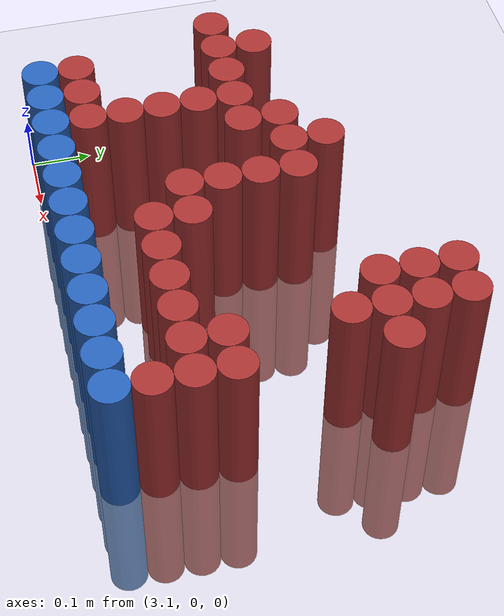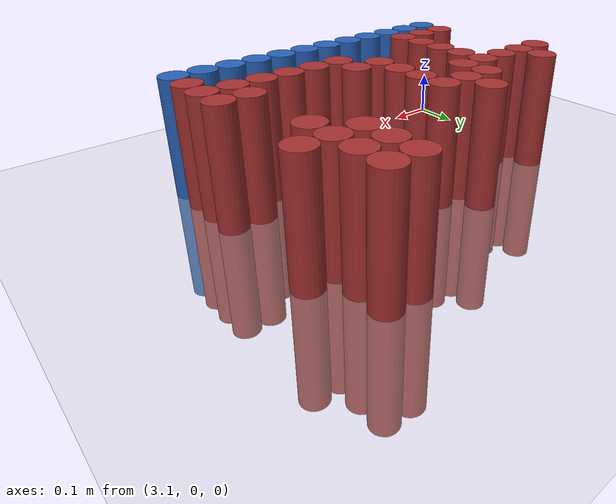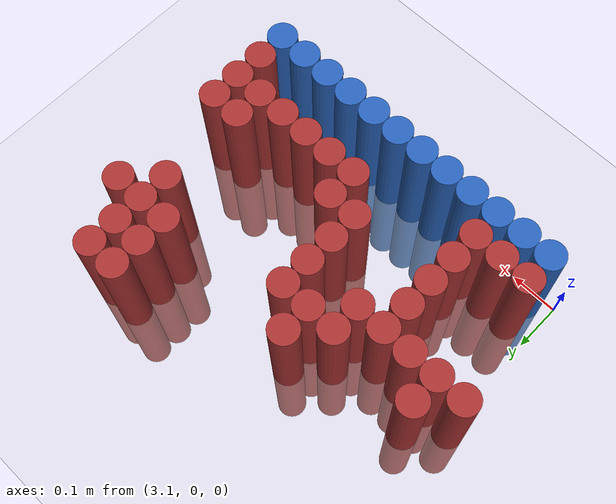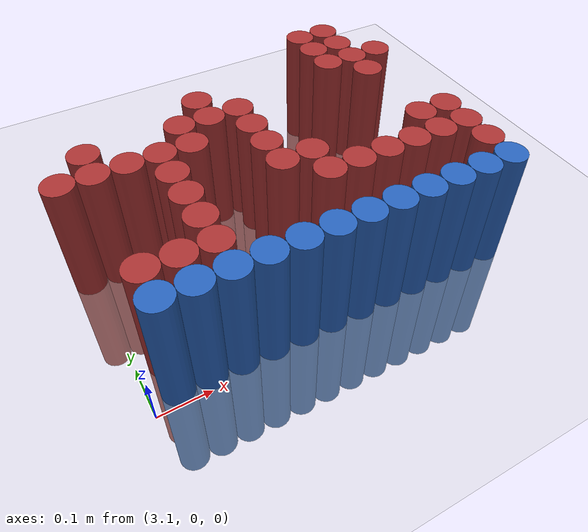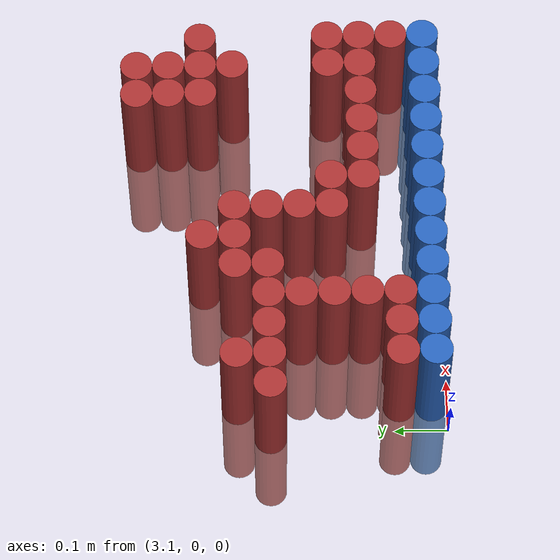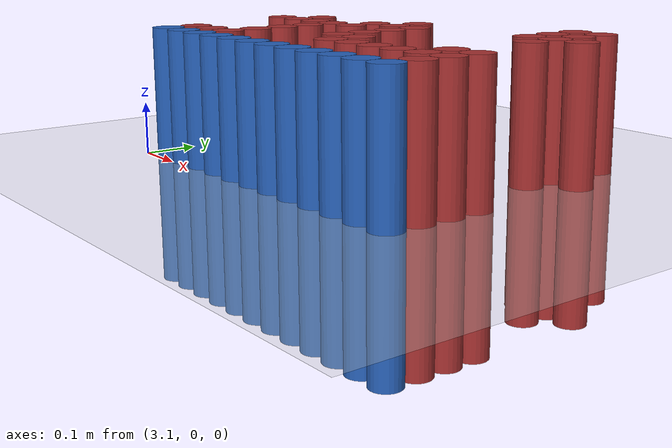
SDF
<sdf version="1.6">
 <world name="default">
  <model name="ground_plane">
   <static>1</static>
   <link name="link">
    <collision name="collision">
     <geometry><plane><normal>0 0 1</normal><size>100 100</size></plane></geometry>
     <surface><friction><ode><mu>100</mu><mu2>50</mu2></ode></friction></surface>
    </collision>
    <visual name="visual">
     <cast_shadows>0</cast_shadows>
     <geometry><plane><normal>0 0 1</normal><size>100 100</size></plane></geometry>
     <material>
      <script><uri>file://media/materials/scripts/gazebo.material</uri><name>Gazebo/Grey</name></script>
     </material>
    </visual>
   </link>
  </model>
  <model name="unit_cylinder_228">
   <static>1</static>
   <pose>3.690000 0.570000 0.000000 0.000000 0.000000 0.000000</pose>
   <link name="link">
    <inertial>
     <mass>1</mass>
     <inertia><ixx>0.145833</ixx><ixy>0</ixy><ixz>0</ixz><iyy>0.145833</iyy><iyz>0</iyz><izz>0.125</izz></inertia>
    </inertial>
    <collision name="collision">
     <geometry><cylinder><radius>0.030000</radius><length>0.5</length></cylinder></geometry>
    </collision>
    <visual name="visual">
     <geometry><cylinder><radius>0.030000</radius><length>0.5</length></cylinder></geometry>
     <material>
      <ambient>0.648000 0.192000 0.192000 1</ambient>
      <diffuse>0.648000 0.192000 0.192000 1</diffuse>
     </material>
     <material>
      <script><name>Gazebo/Grey</name><uri>file://media/materials/scripts/gazebo.material</uri></script>
     </material>
    </visual>
   </link>
  </model>
  <model name="unit_cylinder_229">
   <static>1</static>
   <pose>3.750000 0.570000 0.000000 0.000000 0.000000 0.000000</pose>
   <link name="link">
    <inertial>
     <mass>1</mass>
     <inertia><ixx>0.145833</ixx><ixy>0</ixy><ixz>0</ixz><iyy>0.145833</iyy><iyz>0</iyz><izz>0.125</izz></inertia>
    </inertial>
    <collision name="collision">
     <geometry><cylinder><radius>0.030000</radius><length>0.5</length></cylinder></geometry>
    </collision>
    <visual name="visual">
     <geometry><cylinder><radius>0.030000</radius><length>0.5</length></cylinder></geometry>
     <material>
      <ambient>0.648000 0.192000 0.192000 1</ambient>
      <diffuse>0.648000 0.192000 0.192000 1</diffuse>
     </material>
     <material>
      <script><name>Gazebo/Grey</name><uri>file://media/materials/scripts/gazebo.material</uri></script>
     </material>
    </visual>
   </link>
  </model>
  <model name="unit_cylinder_235">
   <static>1</static>
   <pose>3.690000 0.510000 0.000000 0.000000 0.000000 0.000000</pose>
   <link name="link">
    <inertial>
     <mass>1</mass>
     <inertia><ixx>0.145833</ixx><ixy>0</ixy><ixz>0</ixz><iyy>0.145833</iyy><iyz>0</iyz><izz>0.125</izz></inertia>
    </inertial>
    <collision name="collision">
     <geometry><cylinder><radius>0.030000</radius><length>0.5</length></cylinder></geometry>
    </collision>
    <visual name="visual">
     <geometry><cylinder><radius>0.030000</radius><length>0.5</length></cylinder></geometry>
     <material>
      <ambient>0.648000 0.192000 0.192000 1</ambient>
      <diffuse>0.648000 0.192000 0.192000 1</diffuse>
     </material>
     <material>
      <script><name>Gazebo/Grey</name><uri>file://media/materials/scripts/gazebo.material</uri></script>
     </material>
    </visual>
   </link>
  </model>
  <model name="unit_cylinder_236">
   <static>1</static>
   <pose>3.750000 0.510000 0.000000 0.000000 0.000000 0.000000</pose>
   <link name="link">
    <inertial>
     <mass>1</mass>
     <inertia><ixx>0.145833</ixx><ixy>0</ixy><ixz>0</ixz><iyy>0.145833</iyy><iyz>0</iyz><izz>0.125</izz></inertia>
    </inertial>
    <collision name="collision">
     <geometry><cylinder><radius>0.030000</radius><length>0.5</length></cylinder></geometry>
    </collision>
    <visual name="visual">
     <geometry><cylinder><radius>0.030000</radius><length>0.5</length></cylinder></geometry>
     <material>
      <ambient>0.648000 0.192000 0.192000 1</ambient>
      <diffuse>0.648000 0.192000 0.192000 1</diffuse>
     </material>
     <material>
      <script><name>Gazebo/Grey</name><uri>file://media/materials/scripts/gazebo.material</uri></script>
     </material>
    </visual>
   </link>
  </model>
  <model name="unit_cylinder_241">
   <static>1</static>
   <pose>3.390000 0.450000 0.000000 0.000000 0.000000 0.000000</pose>
   <link name="link">
    <inertial>
     <mass>1</mass>
     <inertia><ixx>0.145833</ixx><ixy>0</ixy><ixz>0</ixz><iyy>0.145833</iyy><iyz>0</iyz><izz>0.125</izz></inertia>
    </inertial>
    <collision name="collision">
     <geometry><cylinder><radius>0.030000</radius><length>0.5</length></cylinder></geometry>
    </collision>
    <visual name="visual">
     <geometry><cylinder><radius>0.030000</radius><length>0.5</length></cylinder></geometry>
     <material>
      <ambient>0.648000 0.192000 0.192000 1</ambient>
      <diffuse>0.648000 0.192000 0.192000 1</diffuse>
     </material>
     <material>
      <script><name>Gazebo/Grey</name><uri>file://media/materials/scripts/gazebo.material</uri></script>
     </material>
    </visual>
   </link>
  </model>
  <model name="unit_cylinder_242">
   <static>1</static>
   <pose>3.690000 0.450000 0.000000 0.000000 0.000000 0.000000</pose>
   <link name="link">
    <inertial>
     <mass>1</mass>
     <inertia><ixx>0.145833</ixx><ixy>0</ixy><ixz>0</ixz><iyy>0.145833</iyy><iyz>0</iyz><izz>0.125</izz></inertia>
    </inertial>
    <collision name="collision">
     <geometry><cylinder><radius>0.030000</radius><length>0.5</length></cylinder></geometry>
    </collision>
    <visual name="visual">
     <geometry><cylinder><radius>0.030000</radius><length>0.5</length></cylinder></geometry>
     <material>
      <ambient>0.648000 0.192000 0.192000 1</ambient>
      <diffuse>0.648000 0.192000 0.192000 1</diffuse>
     </material>
     <material>
      <script><name>Gazebo/Grey</name><uri>file://media/materials/scripts/gazebo.material</uri></script>
     </material>
    </visual>
   </link>
  </model>
  <model name="unit_cylinder_243">
   <static>1</static>
   <pose>3.750000 0.450000 0.000000 0.000000 0.000000 0.000000</pose>
   <link name="link">
    <inertial>
     <mass>1</mass>
     <inertia><ixx>0.145833</ixx><ixy>0</ixy><ixz>0</ixz><iyy>0.145833</iyy><iyz>0</iyz><izz>0.125</izz></inertia>
    </inertial>
    <collision name="collision">
     <geometry><cylinder><radius>0.030000</radius><length>0.5</length></cylinder></geometry>
    </collision>
    <visual name="visual">
     <geometry><cylinder><radius>0.030000</radius><length>0.5</length></cylinder></geometry>
     <material>
      <ambient>0.648000 0.192000 0.192000 1</ambient>
      <diffuse>0.648000 0.192000 0.192000 1</diffuse>
     </material>
     <material>
      <script><name>Gazebo/Grey</name><uri>file://media/materials/scripts/gazebo.material</uri></script>
     </material>
    </visual>
   </link>
  </model>
  <model name="unit_cylinder_244">
   <static>1</static>
   <pose>3.810000 0.450000 0.000000 0.000000 0.000000 0.000000</pose>
   <link name="link">
    <inertial>
     <mass>1</mass>
     <inertia><ixx>0.145833</ixx><ixy>0</ixy><ixz>0</ixz><iyy>0.145833</iyy><iyz>0</iyz><izz>0.125</izz></inertia>
    </inertial>
    <collision name="collision">
     <geometry><cylinder><radius>0.030000</radius><length>0.5</length></cylinder></geometry>
    </collision>
    <visual name="visual">
     <geometry><cylinder><radius>0.030000</radius><length>0.5</length></cylinder></geometry>
     <material>
      <ambient>0.648000 0.192000 0.192000 1</ambient>
      <diffuse>0.648000 0.192000 0.192000 1</diffuse>
     </material>
     <material>
      <script><name>Gazebo/Grey</name><uri>file://media/materials/scripts/gazebo.material</uri></script>
     </material>
    </visual>
   </link>
  </model>
  <model name="unit_cylinder_251">
   <static>1</static>
   <pose>3.150000 0.390000 0.000000 0.000000 0.000000 0.000000</pose>
   <link name="link">
    <inertial>
     <mass>1</mass>
     <inertia><ixx>0.145833</ixx><ixy>0</ixy><ixz>0</ixz><iyy>0.145833</iyy><iyz>0</iyz><izz>0.125</izz></inertia>
    </inertial>
    <collision name="collision">
     <geometry><cylinder><radius>0.030000</radius><length>0.5</length></cylinder></geometry>
    </collision>
    <visual name="visual">
     <geometry><cylinder><radius>0.030000</radius><length>0.5</length></cylinder></geometry>
     <material>
      <ambient>0.648000 0.192000 0.192000 1</ambient>
      <diffuse>0.648000 0.192000 0.192000 1</diffuse>
     </material>
     <material>
      <script><name>Gazebo/Grey</name><uri>file://media/materials/scripts/gazebo.material</uri></script>
     </material>
    </visual>
   </link>
  </model>
  <model name="unit_cylinder_252">
   <static>1</static>
   <pose>3.330000 0.390000 0.000000 0.000000 0.000000 0.000000</pose>
   <link name="link">
    <inertial>
     <mass>1</mass>
     <inertia><ixx>0.145833</ixx><ixy>0</ixy><ixz>0</ixz><iyy>0.145833</iyy><iyz>0</iyz><izz>0.125</izz></inertia>
    </inertial>
    <collision name="collision">
     <geometry><cylinder><radius>0.030000</radius><length>0.5</length></cylinder></geometry>
    </collision>
    <visual name="visual">
     <geometry><cylinder><radius>0.030000</radius><length>0.5</length></cylinder></geometry>
     <material>
      <ambient>0.648000 0.192000 0.192000 1</ambient>
      <diffuse>0.648000 0.192000 0.192000 1</diffuse>
     </material>
     <material>
      <script><name>Gazebo/Grey</name><uri>file://media/materials/scripts/gazebo.material</uri></script>
     </material>
    </visual>
   </link>
  </model>
  <model name="unit_cylinder_253">
   <static>1</static>
   <pose>3.390000 0.390000 0.000000 0.000000 0.000000 0.000000</pose>
   <link name="link">
    <inertial>
     <mass>1</mass>
     <inertia><ixx>0.145833</ixx><ixy>0</ixy><ixz>0</ixz><iyy>0.145833</iyy><iyz>0</iyz><izz>0.125</izz></inertia>
    </inertial>
    <collision name="collision">
     <geometry><cylinder><radius>0.030000</radius><length>0.5</length></cylinder></geometry>
    </collision>
    <visual name="visual">
     <geometry><cylinder><radius>0.030000</radius><length>0.5</length></cylinder></geometry>
     <material>
      <ambient>0.648000 0.192000 0.192000 1</ambient>
      <diffuse>0.648000 0.192000 0.192000 1</diffuse>
     </material>
     <material>
      <script><name>Gazebo/Grey</name><uri>file://media/materials/scripts/gazebo.material</uri></script>
     </material>
    </visual>
   </link>
  </model>
  <model name="unit_cylinder_254">
   <static>1</static>
   <pose>3.450000 0.390000 0.000000 0.000000 0.000000 0.000000</pose>
   <link name="link">
    <inertial>
     <mass>1</mass>
     <inertia><ixx>0.145833</ixx><ixy>0</ixy><ixz>0</ixz><iyy>0.145833</iyy><iyz>0</iyz><izz>0.125</izz></inertia>
    </inertial>
    <collision name="collision">
     <geometry><cylinder><radius>0.030000</radius><length>0.5</length></cylinder></geometry>
    </collision>
    <visual name="visual">
     <geometry><cylinder><radius>0.030000</radius><length>0.5</length></cylinder></geometry>
     <material>
      <ambient>0.648000 0.192000 0.192000 1</ambient>
      <diffuse>0.648000 0.192000 0.192000 1</diffuse>
     </material>
     <material>
      <script><name>Gazebo/Grey</name><uri>file://media/materials/scripts/gazebo.material</uri></script>
     </material>
    </visual>
   </link>
  </model>
  <model name="unit_cylinder_255">
   <static>1</static>
   <pose>3.750000 0.390000 0.000000 0.000000 0.000000 0.000000</pose>
   <link name="link">
    <inertial>
     <mass>1</mass>
     <inertia><ixx>0.145833</ixx><ixy>0</ixy><ixz>0</ixz><iyy>0.145833</iyy><iyz>0</iyz><izz>0.125</izz></inertia>
    </inertial>
    <collision name="collision">
     <geometry><cylinder><radius>0.030000</radius><length>0.5</length></cylinder></geometry>
    </collision>
    <visual name="visual">
     <geometry><cylinder><radius>0.030000</radius><length>0.5</length></cylinder></geometry>
     <material>
      <ambient>0.648000 0.192000 0.192000 1</ambient>
      <diffuse>0.648000 0.192000 0.192000 1</diffuse>
     </material>
     <material>
      <script><name>Gazebo/Grey</name><uri>file://media/materials/scripts/gazebo.material</uri></script>
     </material>
    </visual>
   </link>
  </model>
  <model name="unit_cylinder_261">
   <static>1</static>
   <pose>3.090000 0.330000 0.000000 0.000000 0.000000 0.000000</pose>
   <link name="link">
    <inertial>
     <mass>1</mass>
     <inertia><ixx>0.145833</ixx><ixy>0</ixy><ixz>0</ixz><iyy>0.145833</iyy><iyz>0</iyz><izz>0.125</izz></inertia>
    </inertial>
    <collision name="collision">
     <geometry><cylinder><radius>0.030000</radius><length>0.5</length></cylinder></geometry>
    </collision>
    <visual name="visual">
     <geometry><cylinder><radius>0.030000</radius><length>0.5</length></cylinder></geometry>
     <material>
      <ambient>0.648000 0.192000 0.192000 1</ambient>
      <diffuse>0.648000 0.192000 0.192000 1</diffuse>
     </material>
     <material>
      <script><name>Gazebo/Grey</name><uri>file://media/materials/scripts/gazebo.material</uri></script>
     </material>
    </visual>
   </link>
  </model>
  <model name="unit_cylinder_262">
   <static>1</static>
   <pose>3.150000 0.330000 0.000000 0.000000 0.000000 0.000000</pose>
   <link name="link">
    <inertial>
     <mass>1</mass>
     <inertia><ixx>0.145833</ixx><ixy>0</ixy><ixz>0</ixz><iyy>0.145833</iyy><iyz>0</iyz><izz>0.125</izz></inertia>
    </inertial>
    <collision name="collision">
     <geometry><cylinder><radius>0.030000</radius><length>0.5</length></cylinder></geometry>
    </collision>
    <visual name="visual">
     <geometry><cylinder><radius>0.030000</radius><length>0.5</length></cylinder></geometry>
     <material>
      <ambient>0.648000 0.192000 0.192000 1</ambient>
      <diffuse>0.648000 0.192000 0.192000 1</diffuse>
     </material>
     <material>
      <script><name>Gazebo/Grey</name><uri>file://media/materials/scripts/gazebo.material</uri></script>
     </material>
    </visual>
   </link>
  </model>
  <model name="unit_cylinder_263">
   <static>1</static>
   <pose>3.210000 0.330000 0.000000 0.000000 0.000000 0.000000</pose>
   <link name="link">
    <inertial>
     <mass>1</mass>
     <inertia><ixx>0.145833</ixx><ixy>0</ixy><ixz>0</ixz><iyy>0.145833</iyy><iyz>0</iyz><izz>0.125</izz></inertia>
    </inertial>
    <collision name="collision">
     <geometry><cylinder><radius>0.030000</radius><length>0.5</length></cylinder></geometry>
    </collision>
    <visual name="visual">
     <geometry><cylinder><radius>0.030000</radius><length>0.5</length></cylinder></geometry>
     <material>
      <ambient>0.648000 0.192000 0.192000 1</ambient>
      <diffuse>0.648000 0.192000 0.192000 1</diffuse>
     </material>
     <material>
      <script><name>Gazebo/Grey</name><uri>file://media/materials/scripts/gazebo.material</uri></script>
     </material>
    </visual>
   </link>
  </model>
  <model name="unit_cylinder_264">
   <static>1</static>
   <pose>3.270000 0.330000 0.000000 0.000000 0.000000 0.000000</pose>
   <link name="link">
    <inertial>
     <mass>1</mass>
     <inertia><ixx>0.145833</ixx><ixy>0</ixy><ixz>0</ixz><iyy>0.145833</iyy><iyz>0</iyz><izz>0.125</izz></inertia>
    </inertial>
    <collision name="collision">
     <geometry><cylinder><radius>0.030000</radius><length>0.5</length></cylinder></geometry>
    </collision>
    <visual name="visual">
     <geometry><cylinder><radius>0.030000</radius><length>0.5</length></cylinder></geometry>
     <material>
      <ambient>0.648000 0.192000 0.192000 1</ambient>
      <diffuse>0.648000 0.192000 0.192000 1</diffuse>
     </material>
     <material>
      <script><name>Gazebo/Grey</name><uri>file://media/materials/scripts/gazebo.material</uri></script>
     </material>
    </visual>
   </link>
  </model>
  <model name="unit_cylinder_265">
   <static>1</static>
   <pose>3.330000 0.330000 0.000000 0.000000 0.000000 0.000000</pose>
   <link name="link">
    <inertial>
     <mass>1</mass>
     <inertia><ixx>0.145833</ixx><ixy>0</ixy><ixz>0</ixz><iyy>0.145833</iyy><iyz>0</iyz><izz>0.125</izz></inertia>
    </inertial>
    <collision name="collision">
     <geometry><cylinder><radius>0.030000</radius><length>0.5</length></cylinder></geometry>
    </collision>
    <visual name="visual">
     <geometry><cylinder><radius>0.030000</radius><length>0.5</length></cylinder></geometry>
     <material>
      <ambient>0.648000 0.192000 0.192000 1</ambient>
      <diffuse>0.648000 0.192000 0.192000 1</diffuse>
     </material>
     <material>
      <script><name>Gazebo/Grey</name><uri>file://media/materials/scripts/gazebo.material</uri></script>
     </material>
    </visual>
   </link>
  </model>
  <model name="unit_cylinder_266">
   <static>1</static>
   <pose>3.450000 0.330000 0.000000 0.000000 0.000000 0.000000</pose>
   <link name="link">
    <inertial>
     <mass>1</mass>
     <inertia><ixx>0.145833</ixx><ixy>0</ixy><ixz>0</ixz><iyy>0.145833</iyy><iyz>0</iyz><izz>0.125</izz></inertia>
    </inertial>
    <collision name="collision">
     <geometry><cylinder><radius>0.030000</radius><length>0.5</length></cylinder></geometry>
    </collision>
    <visual name="visual">
     <geometry><cylinder><radius>0.030000</radius><length>0.5</length></cylinder></geometry>
     <material>
      <ambient>0.648000 0.192000 0.192000 1</ambient>
      <diffuse>0.648000 0.192000 0.192000 1</diffuse>
     </material>
     <material>
      <script><name>Gazebo/Grey</name><uri>file://media/materials/scripts/gazebo.material</uri></script>
     </material>
    </visual>
   </link>
  </model>
  <model name="unit_cylinder_275">
   <static>1</static>
   <pose>3.270000 0.270000 0.000000 0.000000 0.000000 0.000000</pose>
   <link name="link">
    <inertial>
     <mass>1</mass>
     <inertia><ixx>0.145833</ixx><ixy>0</ixy><ixz>0</ixz><iyy>0.145833</iyy><iyz>0</iyz><izz>0.125</izz></inertia>
    </inertial>
    <collision name="collision">
     <geometry><cylinder><radius>0.030000</radius><length>0.5</length></cylinder></geometry>
    </collision>
    <visual name="visual">
     <geometry><cylinder><radius>0.030000</radius><length>0.5</length></cylinder></geometry>
     <material>
      <ambient>0.648000 0.192000 0.192000 1</ambient>
      <diffuse>0.648000 0.192000 0.192000 1</diffuse>
     </material>
     <material>
      <script><name>Gazebo/Grey</name><uri>file://media/materials/scripts/gazebo.material</uri></script>
     </material>
    </visual>
   </link>
  </model>
  <model name="unit_cylinder_276">
   <static>1</static>
   <pose>3.450000 0.270000 0.000000 0.000000 0.000000 0.000000</pose>
   <link name="link">
    <inertial>
     <mass>1</mass>
     <inertia><ixx>0.145833</ixx><ixy>0</ixy><ixz>0</ixz><iyy>0.145833</iyy><iyz>0</iyz><izz>0.125</izz></inertia>
    </inertial>
    <collision name="collision">
     <geometry><cylinder><radius>0.030000</radius><length>0.5</length></cylinder></geometry>
    </collision>
    <visual name="visual">
     <geometry><cylinder><radius>0.030000</radius><length>0.5</length></cylinder></geometry>
     <material>
      <ambient>0.648000 0.192000 0.192000 1</ambient>
      <diffuse>0.648000 0.192000 0.192000 1</diffuse>
     </material>
     <material>
      <script><name>Gazebo/Grey</name><uri>file://media/materials/scripts/gazebo.material</uri></script>
     </material>
    </visual>
   </link>
  </model>
  <model name="unit_cylinder_282">
   <static>1</static>
   <pose>3.270000 0.210000 0.000000 0.000000 0.000000 0.000000</pose>
   <link name="link">
    <inertial>
     <mass>1</mass>
     <inertia><ixx>0.145833</ixx><ixy>0</ixy><ixz>0</ixz><iyy>0.145833</iyy><iyz>0</iyz><izz>0.125</izz></inertia>
    </inertial>
    <collision name="collision">
     <geometry><cylinder><radius>0.030000</radius><length>0.5</length></cylinder></geometry>
    </collision>
    <visual name="visual">
     <geometry><cylinder><radius>0.030000</radius><length>0.5</length></cylinder></geometry>
     <material>
      <ambient>0.648000 0.192000 0.192000 1</ambient>
      <diffuse>0.648000 0.192000 0.192000 1</diffuse>
     </material>
     <material>
      <script><name>Gazebo/Grey</name><uri>file://media/materials/scripts/gazebo.material</uri></script>
     </material>
    </visual>
   </link>
  </model>
  <model name="unit_cylinder_283">
   <static>1</static>
   <pose>3.450000 0.210000 0.000000 0.000000 0.000000 0.000000</pose>
   <link name="link">
    <inertial>
     <mass>1</mass>
     <inertia><ixx>0.145833</ixx><ixy>0</ixy><ixz>0</ixz><iyy>0.145833</iyy><iyz>0</iyz><izz>0.125</izz></inertia>
    </inertial>
    <collision name="collision">
     <geometry><cylinder><radius>0.030000</radius><length>0.5</length></cylinder></geometry>
    </collision>
    <visual name="visual">
     <geometry><cylinder><radius>0.030000</radius><length>0.5</length></cylinder></geometry>
     <material>
      <ambient>0.648000 0.192000 0.192000 1</ambient>
      <diffuse>0.648000 0.192000 0.192000 1</diffuse>
     </material>
     <material>
      <script><name>Gazebo/Grey</name><uri>file://media/materials/scripts/gazebo.material</uri></script>
     </material>
    </visual>
   </link>
  </model>
  <model name="unit_cylinder_284">
   <static>1</static>
   <pose>3.510000 0.210000 0.000000 0.000000 0.000000 0.000000</pose>
   <link name="link">
    <inertial>
     <mass>1</mass>
     <inertia><ixx>0.145833</ixx><ixy>0</ixy><ixz>0</ixz><iyy>0.145833</iyy><iyz>0</iyz><izz>0.125</izz></inertia>
    </inertial>
    <collision name="collision">
     <geometry><cylinder><radius>0.030000</radius><length>0.5</length></cylinder></geometry>
    </collision>
    <visual name="visual">
     <geometry><cylinder><radius>0.030000</radius><length>0.5</length></cylinder></geometry>
     <material>
      <ambient>0.648000 0.192000 0.192000 1</ambient>
      <diffuse>0.648000 0.192000 0.192000 1</diffuse>
     </material>
     <material>
      <script><name>Gazebo/Grey</name><uri>file://media/materials/scripts/gazebo.material</uri></script>
     </material>
    </visual>
   </link>
  </model>
  <model name="unit_cylinder_285">
   <static>1</static>
   <pose>3.750000 0.210000 0.000000 0.000000 0.000000 0.000000</pose>
   <link name="link">
    <inertial>
     <mass>1</mass>
     <inertia><ixx>0.145833</ixx><ixy>0</ixy><ixz>0</ixz><iyy>0.145833</iyy><iyz>0</iyz><izz>0.125</izz></inertia>
    </inertial>
    <collision name="collision">
     <geometry><cylinder><radius>0.030000</radius><length>0.5</length></cylinder></geometry>
    </collision>
    <visual name="visual">
     <geometry><cylinder><radius>0.030000</radius><length>0.5</length></cylinder></geometry>
     <material>
      <ambient>0.648000 0.192000 0.192000 1</ambient>
      <diffuse>0.648000 0.192000 0.192000 1</diffuse>
     </material>
     <material>
      <script><name>Gazebo/Grey</name><uri>file://media/materials/scripts/gazebo.material</uri></script>
     </material>
    </visual>
   </link>
  </model>
  <model name="unit_cylinder_286">
   <static>1</static>
   <pose>3.810000 0.210000 0.000000 0.000000 0.000000 0.000000</pose>
   <link name="link">
    <inertial>
     <mass>1</mass>
     <inertia><ixx>0.145833</ixx><ixy>0</ixy><ixz>0</ixz><iyy>0.145833</iyy><iyz>0</iyz><izz>0.125</izz></inertia>
    </inertial>
    <collision name="collision">
     <geometry><cylinder><radius>0.030000</radius><length>0.5</length></cylinder></geometry>
    </collision>
    <visual name="visual">
     <geometry><cylinder><radius>0.030000</radius><length>0.5</length></cylinder></geometry>
     <material>
      <ambient>0.648000 0.192000 0.192000 1</ambient>
      <diffuse>0.648000 0.192000 0.192000 1</diffuse>
     </material>
     <material>
      <script><name>Gazebo/Grey</name><uri>file://media/materials/scripts/gazebo.material</uri></script>
     </material>
    </visual>
   </link>
  </model>
  <model name="unit_cylinder_291">
   <static>1</static>
   <pose>3.270000 0.150000 0.000000 0.000000 0.000000 0.000000</pose>
   <link name="link">
    <inertial>
     <mass>1</mass>
     <inertia><ixx>0.145833</ixx><ixy>0</ixy><ixz>0</ixz><iyy>0.145833</iyy><iyz>0</iyz><izz>0.125</izz></inertia>
    </inertial>
    <collision name="collision">
     <geometry><cylinder><radius>0.030000</radius><length>0.5</length></cylinder></geometry>
    </collision>
    <visual name="visual">
     <geometry><cylinder><radius>0.030000</radius><length>0.5</length></cylinder></geometry>
     <material>
      <ambient>0.648000 0.192000 0.192000 1</ambient>
      <diffuse>0.648000 0.192000 0.192000 1</diffuse>
     </material>
     <material>
      <script><name>Gazebo/Grey</name><uri>file://media/materials/scripts/gazebo.material</uri></script>
     </material>
    </visual>
   </link>
  </model>
  <model name="unit_cylinder_292">
   <static>1</static>
   <pose>3.510000 0.150000 0.000000 0.000000 0.000000 0.000000</pose>
   <link name="link">
    <inertial>
     <mass>1</mass>
     <inertia><ixx>0.145833</ixx><ixy>0</ixy><ixz>0</ixz><iyy>0.145833</iyy><iyz>0</iyz><izz>0.125</izz></inertia>
    </inertial>
    <collision name="collision">
     <geometry><cylinder><radius>0.030000</radius><length>0.5</length></cylinder></geometry>
    </collision>
    <visual name="visual">
     <geometry><cylinder><radius>0.030000</radius><length>0.5</length></cylinder></geometry>
     <material>
      <ambient>0.648000 0.192000 0.192000 1</ambient>
      <diffuse>0.648000 0.192000 0.192000 1</diffuse>
     </material>
     <material>
      <script><name>Gazebo/Grey</name><uri>file://media/materials/scripts/gazebo.material</uri></script>
     </material>
    </visual>
   </link>
  </model>
  <model name="unit_cylinder_293">
   <static>1</static>
   <pose>3.570000 0.150000 0.000000 0.000000 0.000000 0.000000</pose>
   <link name="link">
    <inertial>
     <mass>1</mass>
     <inertia><ixx>0.145833</ixx><ixy>0</ixy><ixz>0</ixz><iyy>0.145833</iyy><iyz>0</iyz><izz>0.125</izz></inertia>
    </inertial>
    <collision name="collision">
     <geometry><cylinder><radius>0.030000</radius><length>0.5</length></cylinder></geometry>
    </collision>
    <visual name="visual">
     <geometry><cylinder><radius>0.030000</radius><length>0.5</length></cylinder></geometry>
     <material>
      <ambient>0.648000 0.192000 0.192000 1</ambient>
      <diffuse>0.648000 0.192000 0.192000 1</diffuse>
     </material>
     <material>
      <script><name>Gazebo/Grey</name><uri>file://media/materials/scripts/gazebo.material</uri></script>
     </material>
    </visual>
   </link>
  </model>
  <model name="unit_cylinder_294">
   <static>1</static>
   <pose>3.630000 0.150000 0.000000 0.000000 0.000000 0.000000</pose>
   <link name="link">
    <inertial>
     <mass>1</mass>
     <inertia><ixx>0.145833</ixx><ixy>0</ixy><ixz>0</ixz><iyy>0.145833</iyy><iyz>0</iyz><izz>0.125</izz></inertia>
    </inertial>
    <collision name="collision">
     <geometry><cylinder><radius>0.030000</radius><length>0.5</length></cylinder></geometry>
    </collision>
    <visual name="visual">
     <geometry><cylinder><radius>0.030000</radius><length>0.5</length></cylinder></geometry>
     <material>
      <ambient>0.648000 0.192000 0.192000 1</ambient>
      <diffuse>0.648000 0.192000 0.192000 1</diffuse>
     </material>
     <material>
      <script><name>Gazebo/Grey</name><uri>file://media/materials/scripts/gazebo.material</uri></script>
     </material>
    </visual>
   </link>
  </model>
  <model name="unit_cylinder_295">
   <static>1</static>
   <pose>3.690000 0.150000 0.000000 0.000000 0.000000 0.000000</pose>
   <link name="link">
    <inertial>
     <mass>1</mass>
     <inertia><ixx>0.145833</ixx><ixy>0</ixy><ixz>0</ixz><iyy>0.145833</iyy><iyz>0</iyz><izz>0.125</izz></inertia>
    </inertial>
    <collision name="collision">
     <geometry><cylinder><radius>0.030000</radius><length>0.5</length></cylinder></geometry>
    </collision>
    <visual name="visual">
     <geometry><cylinder><radius>0.030000</radius><length>0.5</length></cylinder></geometry>
     <material>
      <ambient>0.648000 0.192000 0.192000 1</ambient>
      <diffuse>0.648000 0.192000 0.192000 1</diffuse>
     </material>
     <material>
      <script><name>Gazebo/Grey</name><uri>file://media/materials/scripts/gazebo.material</uri></script>
     </material>
    </visual>
   </link>
  </model>
  <model name="unit_cylinder_296">
   <static>1</static>
   <pose>3.750000 0.150000 0.000000 0.000000 0.000000 0.000000</pose>
   <link name="link">
    <inertial>
     <mass>1</mass>
     <inertia><ixx>0.145833</ixx><ixy>0</ixy><ixz>0</ixz><iyy>0.145833</iyy><iyz>0</iyz><izz>0.125</izz></inertia>
    </inertial>
    <collision name="collision">
     <geometry><cylinder><radius>0.030000</radius><length>0.5</length></cylinder></geometry>
    </collision>
    <visual name="visual">
     <geometry><cylinder><radius>0.030000</radius><length>0.5</length></cylinder></geometry>
     <material>
      <ambient>0.648000 0.192000 0.192000 1</ambient>
      <diffuse>0.648000 0.192000 0.192000 1</diffuse>
     </material>
     <material>
      <script><name>Gazebo/Grey</name><uri>file://media/materials/scripts/gazebo.material</uri></script>
     </material>
    </visual>
   </link>
  </model>
  <model name="unit_cylinder_297">
   <static>1</static>
   <pose>3.810000 0.150000 0.000000 0.000000 0.000000 0.000000</pose>
   <link name="link">
    <inertial>
     <mass>1</mass>
     <inertia><ixx>0.145833</ixx><ixy>0</ixy><ixz>0</ixz><iyy>0.145833</iyy><iyz>0</iyz><izz>0.125</izz></inertia>
    </inertial>
    <collision name="collision">
     <geometry><cylinder><radius>0.030000</radius><length>0.5</length></cylinder></geometry>
    </collision>
    <visual name="visual">
     <geometry><cylinder><radius>0.030000</radius><length>0.5</length></cylinder></geometry>
     <material>
      <ambient>0.648000 0.192000 0.192000 1</ambient>
      <diffuse>0.648000 0.192000 0.192000 1</diffuse>
     </material>
     <material>
      <script><name>Gazebo/Grey</name><uri>file://media/materials/scripts/gazebo.material</uri></script>
     </material>
    </visual>
   </link>
  </model>
  <model name="unit_cylinder_311">
   <static>1</static>
   <pose>3.150000 0.090000 0.000000 0.000000 0.000000 0.000000</pose>
   <link name="link">
    <inertial>
     <mass>1</mass>
     <inertia><ixx>0.145833</ixx><ixy>0</ixy><ixz>0</ixz><iyy>0.145833</iyy><iyz>0</iyz><izz>0.125</izz></inertia>
    </inertial>
    <collision name="collision">
     <geometry><cylinder><radius>0.030000</radius><length>0.5</length></cylinder></geometry>
    </collision>
    <visual name="visual">
     <geometry><cylinder><radius>0.030000</radius><length>0.5</length></cylinder></geometry>
     <material>
      <ambient>0.648000 0.192000 0.192000 1</ambient>
      <diffuse>0.648000 0.192000 0.192000 1</diffuse>
     </material>
     <material>
      <script><name>Gazebo/Grey</name><uri>file://media/materials/scripts/gazebo.material</uri></script>
     </material>
    </visual>
   </link>
  </model>
  <model name="unit_cylinder_312">
   <static>1</static>
   <pose>3.210000 0.090000 0.000000 0.000000 0.000000 0.000000</pose>
   <link name="link">
    <inertial>
     <mass>1</mass>
     <inertia><ixx>0.145833</ixx><ixy>0</ixy><ixz>0</ixz><iyy>0.145833</iyy><iyz>0</iyz><izz>0.125</izz></inertia>
    </inertial>
    <collision name="collision">
     <geometry><cylinder><radius>0.030000</radius><length>0.5</length></cylinder></geometry>
    </collision>
    <visual name="visual">
     <geometry><cylinder><radius>0.030000</radius><length>0.5</length></cylinder></geometry>
     <material>
      <ambient>0.648000 0.192000 0.192000 1</ambient>
      <diffuse>0.648000 0.192000 0.192000 1</diffuse>
     </material>
     <material>
      <script><name>Gazebo/Grey</name><uri>file://media/materials/scripts/gazebo.material</uri></script>
     </material>
    </visual>
   </link>
  </model>
  <model name="unit_cylinder_313">
   <static>1</static>
   <pose>3.270000 0.090000 0.000000 0.000000 0.000000 0.000000</pose>
   <link name="link">
    <inertial>
     <mass>1</mass>
     <inertia><ixx>0.145833</ixx><ixy>0</ixy><ixz>0</ixz><iyy>0.145833</iyy><iyz>0</iyz><izz>0.125</izz></inertia>
    </inertial>
    <collision name="collision">
     <geometry><cylinder><radius>0.030000</radius><length>0.5</length></cylinder></geometry>
    </collision>
    <visual name="visual">
     <geometry><cylinder><radius>0.030000</radius><length>0.5</length></cylinder></geometry>
     <material>
      <ambient>0.648000 0.192000 0.192000 1</ambient>
      <diffuse>0.648000 0.192000 0.192000 1</diffuse>
     </material>
     <material>
      <script><name>Gazebo/Grey</name><uri>file://media/materials/scripts/gazebo.material</uri></script>
     </material>
    </visual>
   </link>
  </model>
  <model name="unit_cylinder_314">
   <static>1</static>
   <pose>3.810000 0.090000 0.000000 0.000000 0.000000 0.000000</pose>
   <link name="link">
    <inertial>
     <mass>1</mass>
     <inertia><ixx>0.145833</ixx><ixy>0</ixy><ixz>0</ixz><iyy>0.145833</iyy><iyz>0</iyz><izz>0.125</izz></inertia>
    </inertial>
    <collision name="collision">
     <geometry><cylinder><radius>0.030000</radius><length>0.5</length></cylinder></geometry>
    </collision>
    <visual name="visual">
     <geometry><cylinder><radius>0.030000</radius><length>0.5</length></cylinder></geometry>
     <material>
      <ambient>0.648000 0.192000 0.192000 1</ambient>
      <diffuse>0.648000 0.192000 0.192000 1</diffuse>
     </material>
     <material>
      <script><name>Gazebo/Grey</name><uri>file://media/materials/scripts/gazebo.material</uri></script>
     </material>
    </visual>
   </link>
  </model>
  <model name="unit_cylinder_333">
   <static>1</static>
   <pose>3.150000 0.030000 0.000000 0.000000 0.000000 0.000000</pose>
   <link name="link">
    <inertial>
     <mass>1</mass>
     <inertia><ixx>0.145833</ixx><ixy>0</ixy><ixz>0</ixz><iyy>0.145833</iyy><iyz>0</iyz><izz>0.125</izz></inertia>
    </inertial>
    <collision name="collision">
     <geometry><cylinder><radius>0.030000</radius><length>0.5</length></cylinder></geometry>
    </collision>
    <visual name="visual">
     <geometry><cylinder><radius>0.030000</radius><length>0.5</length></cylinder></geometry>
     <material>
      <ambient>0.152000 0.379000 0.720000 1</ambient>
      <diffuse>0.152000 0.379000 0.720000 1</diffuse>
     </material>
     <material>
      <script><name>Gazebo/Grey</name><uri>file://media/materials/scripts/gazebo.material</uri></script>
     </material>
    </visual>
   </link>
  </model>
  <model name="unit_cylinder_334">
   <static>1</static>
   <pose>3.210000 0.030000 0.000000 0.000000 0.000000 0.000000</pose>
   <link name="link">
    <inertial>
     <mass>1</mass>
     <inertia><ixx>0.145833</ixx><ixy>0</ixy><ixz>0</ixz><iyy>0.145833</iyy><iyz>0</iyz><izz>0.125</izz></inertia>
    </inertial>
    <collision name="collision">
     <geometry><cylinder><radius>0.030000</radius><length>0.5</length></cylinder></geometry>
    </collision>
    <visual name="visual">
     <geometry><cylinder><radius>0.030000</radius><length>0.5</length></cylinder></geometry>
     <material>
      <ambient>0.152000 0.379000 0.720000 1</ambient>
      <diffuse>0.152000 0.379000 0.720000 1</diffuse>
     </material>
     <material>
      <script><name>Gazebo/Grey</name><uri>file://media/materials/scripts/gazebo.material</uri></script>
     </material>
    </visual>
   </link>
  </model>
  <model name="unit_cylinder_335">
   <static>1</static>
   <pose>3.270000 0.030000 0.000000 0.000000 0.000000 0.000000</pose>
   <link name="link">
    <inertial>
     <mass>1</mass>
     <inertia><ixx>0.145833</ixx><ixy>0</ixy><ixz>0</ixz><iyy>0.145833</iyy><iyz>0</iyz><izz>0.125</izz></inertia>
    </inertial>
    <collision name="collision">
     <geometry><cylinder><radius>0.030000</radius><length>0.5</length></cylinder></geometry>
    </collision>
    <visual name="visual">
     <geometry><cylinder><radius>0.030000</radius><length>0.5</length></cylinder></geometry>
     <material>
      <ambient>0.152000 0.379000 0.720000 1</ambient>
      <diffuse>0.152000 0.379000 0.720000 1</diffuse>
     </material>
     <material>
      <script><name>Gazebo/Grey</name><uri>file://media/materials/scripts/gazebo.material</uri></script>
     </material>
    </visual>
   </link>
  </model>
  <model name="unit_cylinder_336">
   <static>1</static>
   <pose>3.330000 0.030000 0.000000 0.000000 0.000000 0.000000</pose>
   <link name="link">
    <inertial>
     <mass>1</mass>
     <inertia><ixx>0.145833</ixx><ixy>0</ixy><ixz>0</ixz><iyy>0.145833</iyy><iyz>0</iyz><izz>0.125</izz></inertia>
    </inertial>
    <collision name="collision">
     <geometry><cylinder><radius>0.030000</radius><length>0.5</length></cylinder></geometry>
    </collision>
    <visual name="visual">
     <geometry><cylinder><radius>0.030000</radius><length>0.5</length></cylinder></geometry>
     <material>
      <ambient>0.152000 0.379000 0.720000 1</ambient>
      <diffuse>0.152000 0.379000 0.720000 1</diffuse>
     </material>
     <material>
      <script><name>Gazebo/Grey</name><uri>file://media/materials/scripts/gazebo.material</uri></script>
     </material>
    </visual>
   </link>
  </model>
  <model name="unit_cylinder_337">
   <static>1</static>
   <pose>3.390000 0.030000 0.000000 0.000000 0.000000 0.000000</pose>
   <link name="link">
    <inertial>
     <mass>1</mass>
     <inertia><ixx>0.145833</ixx><ixy>0</ixy><ixz>0</ixz><iyy>0.145833</iyy><iyz>0</iyz><izz>0.125</izz></inertia>
    </inertial>
    <collision name="collision">
     <geometry><cylinder><radius>0.030000</radius><length>0.5</length></cylinder></geometry>
    </collision>
    <visual name="visual">
     <geometry><cylinder><radius>0.030000</radius><length>0.5</length></cylinder></geometry>
     <material>
      <ambient>0.152000 0.379000 0.720000 1</ambient>
      <diffuse>0.152000 0.379000 0.720000 1</diffuse>
     </material>
     <material>
      <script><name>Gazebo/Grey</name><uri>file://media/materials/scripts/gazebo.material</uri></script>
     </material>
    </visual>
   </link>
  </model>
  <model name="unit_cylinder_338">
   <static>1</static>
   <pose>3.450000 0.030000 0.000000 0.000000 0.000000 0.000000</pose>
   <link name="link">
    <inertial>
     <mass>1</mass>
     <inertia><ixx>0.145833</ixx><ixy>0</ixy><ixz>0</ixz><iyy>0.145833</iyy><iyz>0</iyz><izz>0.125</izz></inertia>
    </inertial>
    <collision name="collision">
     <geometry><cylinder><radius>0.030000</radius><length>0.5</length></cylinder></geometry>
    </collision>
    <visual name="visual">
     <geometry><cylinder><radius>0.030000</radius><length>0.5</length></cylinder></geometry>
     <material>
      <ambient>0.152000 0.379000 0.720000 1</ambient>
      <diffuse>0.152000 0.379000 0.720000 1</diffuse>
     </material>
     <material>
      <script><name>Gazebo/Grey</name><uri>file://media/materials/scripts/gazebo.material</uri></script>
     </material>
    </visual>
   </link>
  </model>
  <model name="unit_cylinder_339">
   <static>1</static>
   <pose>3.510000 0.030000 0.000000 0.000000 0.000000 0.000000</pose>
   <link name="link">
    <inertial>
     <mass>1</mass>
     <inertia><ixx>0.145833</ixx><ixy>0</ixy><ixz>0</ixz><iyy>0.145833</iyy><iyz>0</iyz><izz>0.125</izz></inertia>
    </inertial>
    <collision name="collision">
     <geometry><cylinder><radius>0.030000</radius><length>0.5</length></cylinder></geometry>
    </collision>
    <visual name="visual">
     <geometry><cylinder><radius>0.030000</radius><length>0.5</length></cylinder></geometry>
     <material>
      <ambient>0.152000 0.379000 0.720000 1</ambient>
      <diffuse>0.152000 0.379000 0.720000 1</diffuse>
     </material>
     <material>
      <script><name>Gazebo/Grey</name><uri>file://media/materials/scripts/gazebo.material</uri></script>
     </material>
    </visual>
   </link>
  </model>
  <model name="unit_cylinder_340">
   <static>1</static>
   <pose>3.570000 0.030000 0.000000 0.000000 0.000000 0.000000</pose>
   <link name="link">
    <inertial>
     <mass>1</mass>
     <inertia><ixx>0.145833</ixx><ixy>0</ixy><ixz>0</ixz><iyy>0.145833</iyy><iyz>0</iyz><izz>0.125</izz></inertia>
    </inertial>
    <collision name="collision">
     <geometry><cylinder><radius>0.030000</radius><length>0.5</length></cylinder></geometry>
    </collision>
    <visual name="visual">
     <geometry><cylinder><radius>0.030000</radius><length>0.5</length></cylinder></geometry>
     <material>
      <ambient>0.152000 0.379000 0.720000 1</ambient>
      <diffuse>0.152000 0.379000 0.720000 1</diffuse>
     </material>
     <material>
      <script><name>Gazebo/Grey</name><uri>file://media/materials/scripts/gazebo.material</uri></script>
     </material>
    </visual>
   </link>
  </model>
  <model name="unit_cylinder_341">
   <static>1</static>
   <pose>3.630000 0.030000 0.000000 0.000000 0.000000 0.000000</pose>
   <link name="link">
    <inertial>
     <mass>1</mass>
     <inertia><ixx>0.145833</ixx><ixy>0</ixy><ixz>0</ixz><iyy>0.145833</iyy><iyz>0</iyz><izz>0.125</izz></inertia>
    </inertial>
    <collision name="collision">
     <geometry><cylinder><radius>0.030000</radius><length>0.5</length></cylinder></geometry>
    </collision>
    <visual name="visual">
     <geometry><cylinder><radius>0.030000</radius><length>0.5</length></cylinder></geometry>
     <material>
      <ambient>0.152000 0.379000 0.720000 1</ambient>
      <diffuse>0.152000 0.379000 0.720000 1</diffuse>
     </material>
     <material>
      <script><name>Gazebo/Grey</name><uri>file://media/materials/scripts/gazebo.material</uri></script>
     </material>
    </visual>
   </link>
  </model>
  <model name="unit_cylinder_342">
   <static>1</static>
   <pose>3.690000 0.030000 0.000000 0.000000 0.000000 0.000000</pose>
   <link name="link">
    <inertial>
     <mass>1</mass>
     <inertia><ixx>0.145833</ixx><ixy>0</ixy><ixz>0</ixz><iyy>0.145833</iyy><iyz>0</iyz><izz>0.125</izz></inertia>
    </inertial>
    <collision name="collision">
     <geometry><cylinder><radius>0.030000</radius><length>0.5</length></cylinder></geometry>
    </collision>
    <visual name="visual">
     <geometry><cylinder><radius>0.030000</radius><length>0.5</length></cylinder></geometry>
     <material>
      <ambient>0.152000 0.379000 0.720000 1</ambient>
      <diffuse>0.152000 0.379000 0.720000 1</diffuse>
     </material>
     <material>
      <script><name>Gazebo/Grey</name><uri>file://media/materials/scripts/gazebo.material</uri></script>
     </material>
    </visual>
   </link>
  </model>
  <model name="unit_cylinder_343">
   <static>1</static>
   <pose>3.750000 0.030000 0.000000 0.000000 0.000000 0.000000</pose>
   <link name="link">
    <inertial>
     <mass>1</mass>
     <inertia><ixx>0.145833</ixx><ixy>0</ixy><ixz>0</ixz><iyy>0.145833</iyy><iyz>0</iyz><izz>0.125</izz></inertia>
    </inertial>
    <collision name="collision">
     <geometry><cylinder><radius>0.030000</radius><length>0.5</length></cylinder></geometry>
    </collision>
    <visual name="visual">
     <geometry><cylinder><radius>0.030000</radius><length>0.5</length></cylinder></geometry>
     <material>
      <ambient>0.152000 0.379000 0.720000 1</ambient>
      <diffuse>0.152000 0.379000 0.720000 1</diffuse>
     </material>
     <material>
      <script><name>Gazebo/Grey</name><uri>file://media/materials/scripts/gazebo.material</uri></script>
     </material>
    </visual>
   </link>
  </model>
  <model name="unit_cylinder_344">
   <static>1</static>
   <pose>3.810000 0.030000 0.000000 0.000000 0.000000 0.000000</pose>
   <link name="link">
    <inertial>
     <mass>1</mass>
     <inertia><ixx>0.145833</ixx><ixy>0</ixy><ixz>0</ixz><iyy>0.145833</iyy><iyz>0</iyz><izz>0.125</izz></inertia>
    </inertial>
    <collision name="collision">
     <geometry><cylinder><radius>0.030000</radius><length>0.5</length></cylinder></geometry>
    </collision>
    <visual name="visual">
     <geometry><cylinder><radius>0.030000</radius><length>0.5</length></cylinder></geometry>
     <material>
      <ambient>0.152000 0.379000 0.720000 1</ambient>
      <diffuse>0.152000 0.379000 0.720000 1</diffuse>
     </material>
     <material>
      <script><name>Gazebo/Grey</name><uri>file://media/materials/scripts/gazebo.material</uri></script>
     </material>
    </visual>
   </link>
  </model>
 </world>
</sdf>
